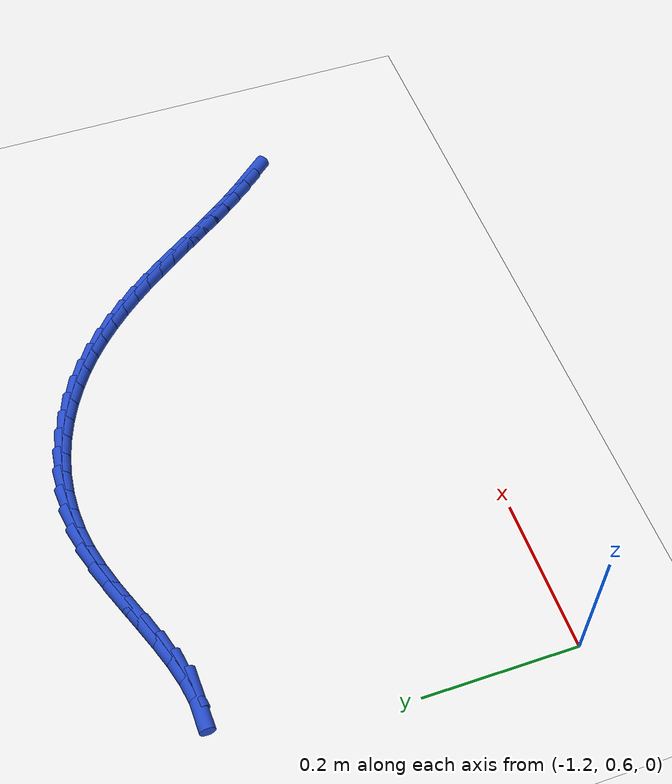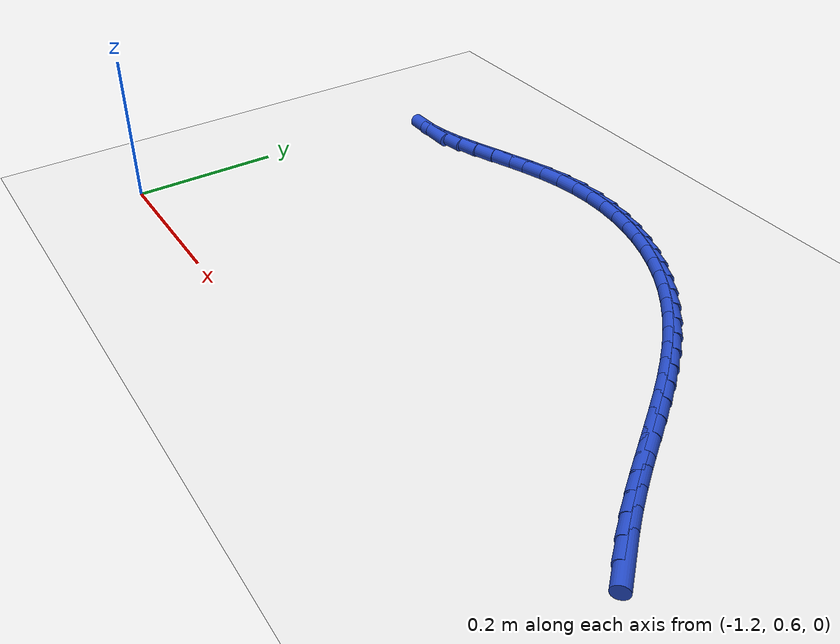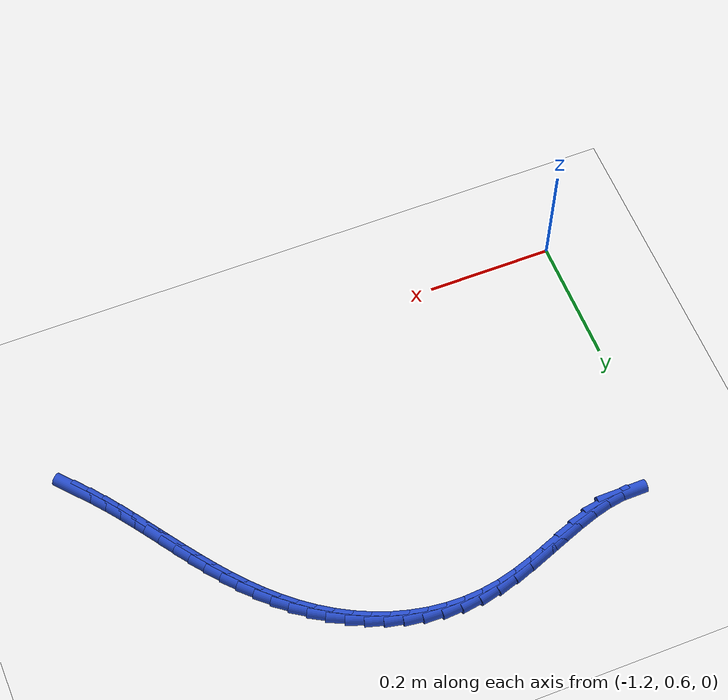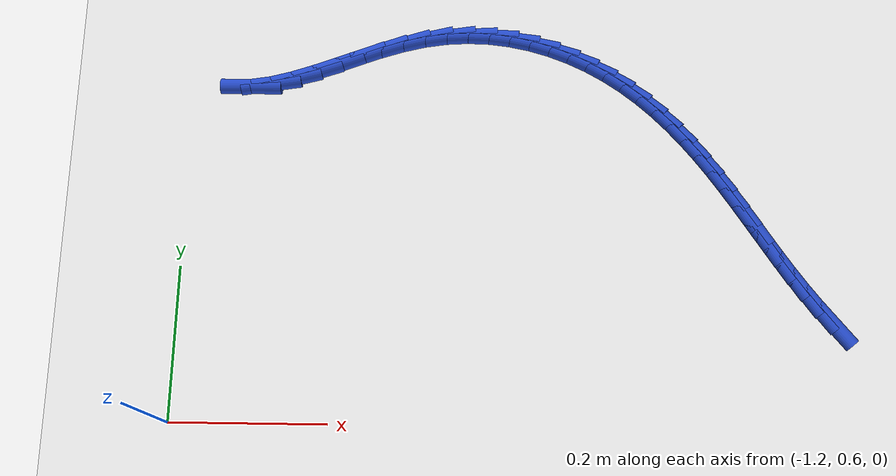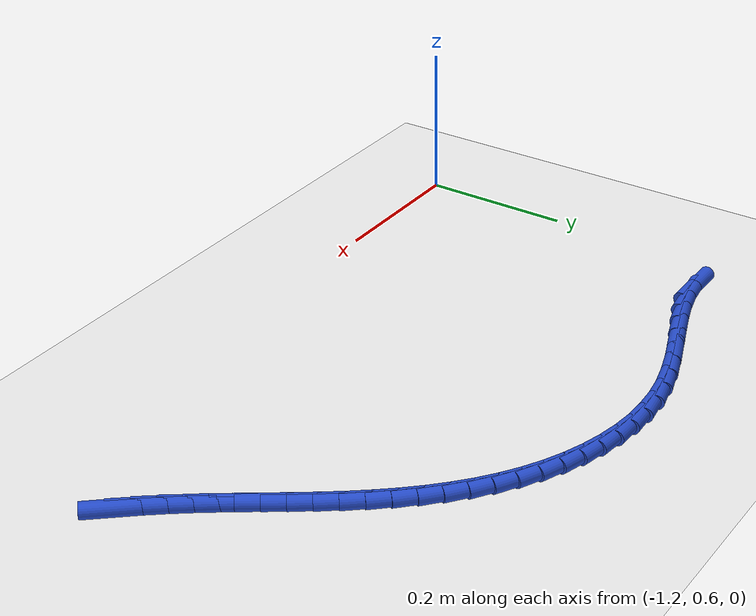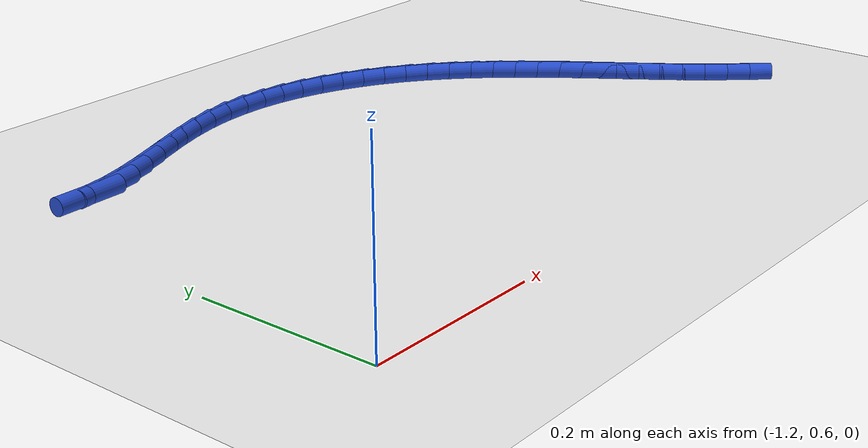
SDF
<sdf version="1.6">
 <world name="default">
  <model name="ground_plane">
   <static>1</static>
   <link name="link">
    <collision name="collision">
     <geometry><plane><normal>0 0 1</normal><size>100 100</size></plane></geometry>
     <surface><friction><ode><mu>100</mu><mu2>50</mu2></ode></friction></surface>
    </collision>
    <visual name="visual">
     <cast_shadows>0</cast_shadows>
     <geometry><plane><normal>0 0 1</normal><size>100 100</size></plane></geometry>
     <material>
      <script><uri>file://media/materials/scripts/gazebo.material</uri><name>Gazebo/WhiteGlow</name></script>
     </material>
    </visual>
   </link>
  </model>
  <model name="line">
   <link name="link_31">
    <pose>-0.3675079683596481 0.7365908078215946 0.01 0 1.57 -0.8658424899538193</pose>
    <collision name="collision">
     <geometry><cylinder><radius>0.01</radius><length>0.08</length></cylinder></geometry>
    </collision>
    <visual name="visual">
     <material>
      <script><name>Gazebo/Blue</name><uri>file://media/materials/scripts/gazebo.material</uri></script>
     </material>
     <geometry><cylinder><radius>0.01</radius><length>0.08</length></cylinder></geometry>
    </visual>
   </link>
   <link name="link_32">
    <pose>-0.3851431258824413 0.7573187318830612 0.01 0 1.57 -0.8989108063107654</pose>
    <collision name="collision">
     <geometry><cylinder><radius>0.01</radius><length>0.08</length></cylinder></geometry>
    </collision>
    <visual name="visual">
     <material>
      <script><name>Gazebo/Blue</name><uri>file://media/materials/scripts/gazebo.material</uri></script>
     </material>
     <geometry><cylinder><radius>0.01</radius><length>0.08</length></cylinder></geometry>
    </visual>
   </link>
   <link name="link_33">
    <pose>-0.40208083167461295 0.7786152419017476 0.01 0 1.57 -0.9306602874152675</pose>
    <collision name="collision">
     <geometry><cylinder><radius>0.01</radius><length>0.08</length></cylinder></geometry>
    </collision>
    <visual name="visual">
     <material>
      <script><name>Gazebo/Blue</name><uri>file://media/materials/scripts/gazebo.material</uri></script>
     </material>
     <geometry><cylinder><radius>0.01</radius><length>0.08</length></cylinder></geometry>
    </visual>
   </link>
   <link name="link_34">
    <pose>-0.4183518628415559 0.8004627282611356 0.01 0 1.57 -0.9537615742624455</pose>
    <collision name="collision">
     <geometry><cylinder><radius>0.01</radius><length>0.08</length></cylinder></geometry>
    </collision>
    <visual name="visual">
     <material>
      <script><name>Gazebo/Blue</name><uri>file://media/materials/scripts/gazebo.material</uri></script>
     </material>
     <geometry><cylinder><radius>0.01</radius><length>0.08</length></cylinder></geometry>
    </visual>
   </link>
   <link name="link_35">
    <pose>-0.43414135213555904 0.8227189396943771 0.01 0 1.57 -0.9679293875613233</pose>
    <collision name="collision">
     <geometry><cylinder><radius>0.01</radius><length>0.08</length></cylinder></geometry>
    </collision>
    <visual name="visual">
     <material>
      <script><name>Gazebo/Blue</name><uri>file://media/materials/scripts/gazebo.material</uri></script>
     </material>
     <geometry><cylinder><radius>0.01</radius><length>0.08</length></cylinder></geometry>
    </visual>
   </link>
   <link name="link_36">
    <pose>-0.4496411795427079 0.8452361765666986 0.01 0 1.57 -0.9732190251502583</pose>
    <collision name="collision">
     <geometry><cylinder><radius>0.01</radius><length>0.08</length></cylinder></geometry>
    </collision>
    <visual name="visual">
     <material>
      <script><name>Gazebo/Blue</name><uri>file://media/materials/scripts/gazebo.material</uri></script>
     </material>
     <geometry><cylinder><radius>0.01</radius><length>0.08</length></cylinder></geometry>
    </visual>
   </link>
   <link name="link_37">
    <pose>-0.46504322504908735 0.8678667392433268 0.01 0 1.57 -0.9696739872765708</pose>
    <collision name="collision">
     <geometry><cylinder><radius>0.01</radius><length>0.08</length></cylinder></geometry>
    </collision>
    <visual name="visual">
     <material>
      <script><name>Gazebo/Blue</name><uri>file://media/materials/scripts/gazebo.material</uri></script>
     </material>
     <geometry><cylinder><radius>0.01</radius><length>0.08</length></cylinder></geometry>
    </visual>
   </link>
   <link name="link_38">
    <pose>-0.4805393686407831 0.8904629280894885 0.01 0 1.57 -0.9573137500110067</pose>
    <collision name="collision">
     <geometry><cylinder><radius>0.01</radius><length>0.08</length></cylinder></geometry>
    </collision>
    <visual name="visual">
     <material>
      <script><name>Gazebo/Blue</name><uri>file://media/materials/scripts/gazebo.material</uri></script>
     </material>
     <geometry><cylinder><radius>0.01</radius><length>0.08</length></cylinder></geometry>
    </visual>
   </link>
   <link name="link_39">
    <pose>-0.4963214903038802 0.9128770434704099 0.01 0 1.57 -0.9361422142391677</pose>
    <collision name="collision">
     <geometry><cylinder><radius>0.01</radius><length>0.08</length></cylinder></geometry>
    </collision>
    <visual name="visual">
     <material>
      <script><name>Gazebo/Blue</name><uri>file://media/materials/scripts/gazebo.material</uri></script>
     </material>
     <geometry><cylinder><radius>0.01</radius><length>0.08</length></cylinder></geometry>
    </visual>
   </link>
   <link name="link_40">
    <pose>-0.5125814700244635 0.9349613857513178 0.01 0 1.57 -0.9061978779624982</pose>
    <collision name="collision">
     <geometry><cylinder><radius>0.01</radius><length>0.08</length></cylinder></geometry>
    </collision>
    <visual name="visual">
     <material>
      <script><name>Gazebo/Blue</name><uri>file://media/materials/scripts/gazebo.material</uri></script>
     </material>
     <geometry><cylinder><radius>0.01</radius><length>0.08</length></cylinder></geometry>
    </visual>
   </link>
   <link name="link_41">
    <pose>-0.5295102947037077 0.9565680643680382 0.01 0 1.57 -0.8686071542196805</pose>
    <collision name="collision">
     <geometry><cylinder><radius>0.01</radius><length>0.08</length></cylinder></geometry>
    </collision>
    <visual name="visual">
     <material>
      <script><name>Gazebo/Blue</name><uri>file://media/materials/scripts/gazebo.material</uri></script>
     </material>
     <geometry><cylinder><radius>0.01</radius><length>0.08</length></cylinder></geometry>
    </visual>
   </link>
   <link name="link_42">
    <pose>-0.5472527596798153 0.9775393136288042 0.01 0 1.57 -0.8248225254175654</pose>
    <collision name="collision">
     <geometry><cylinder><radius>0.01</radius><length>0.08</length></cylinder></geometry>
    </collision>
    <visual name="visual">
     <material>
      <script><name>Gazebo/Blue</name><uri>file://media/materials/scripts/gazebo.material</uri></script>
     </material>
     <geometry><cylinder><radius>0.01</radius><length>0.08</length></cylinder></geometry>
    </visual>
   </link>
   <link name="link_43">
    <pose>-0.5658860189990271 0.9977029070540846 0.01 0 1.57 -0.7747414183541284</pose>
    <collision name="collision">
     <geometry><cylinder><radius>0.01</radius><length>0.08</length></cylinder></geometry>
    </collision>
    <visual name="visual">
     <material>
      <script><name>Gazebo/Blue</name><uri>file://media/materials/scripts/gazebo.material</uri></script>
     </material>
     <geometry><cylinder><radius>0.01</radius><length>0.08</length></cylinder></geometry>
    </visual>
   </link>
   <link name="link_44">
    <pose>-0.5854818470650754 1.016885468069986 0.01 0 1.57 -0.7181914086654505</pose>
    <collision name="collision">
     <geometry><cylinder><radius>0.01</radius><length>0.08</length></cylinder></geometry>
    </collision>
    <visual name="visual">
     <material>
      <script><name>Gazebo/Blue</name><uri>file://media/materials/scripts/gazebo.material</uri></script>
     </material>
     <geometry><cylinder><radius>0.01</radius><length>0.08</length></cylinder></geometry>
    </visual>
   </link>
   <link name="link_45">
    <pose>-0.6061120182816933 1.0349136201026141 0.01 0 1.57 -0.6551214767461419</pose>
    <collision name="collision">
     <geometry><cylinder><radius>0.01</radius><length>0.08</length></cylinder></geometry>
    </collision>
    <visual name="visual">
     <material>
      <script><name>Gazebo/Blue</name><uri>file://media/materials/scripts/gazebo.material</uri></script>
     </material>
     <geometry><cylinder><radius>0.01</radius><length>0.08</length></cylinder></geometry>
    </visual>
   </link>
   <link name="link_46">
    <pose>-0.6278483070526133 1.051613986578076 0.01 0 1.57 -0.5864121940429476</pose>
    <collision name="collision">
     <geometry><cylinder><radius>0.01</radius><length>0.08</length></cylinder></geometry>
    </collision>
    <visual name="visual">
     <material>
      <script><name>Gazebo/Blue</name><uri>file://media/materials/scripts/gazebo.material</uri></script>
     </material>
     <geometry><cylinder><radius>0.01</radius><length>0.08</length></cylinder></geometry>
    </visual>
   </link>
   <link name="link_47">
    <pose>-0.6507348701033847 1.0668191745765627 0.01 0 1.57 -0.5150181969271446</pose>
    <collision name="collision">
     <geometry><cylinder><radius>0.01</radius><length>0.08</length></cylinder></geometry>
    </collision>
    <visual name="visual">
     <material>
      <script><name>Gazebo/Blue</name><uri>file://media/materials/scripts/gazebo.material</uri></script>
     </material>
     <geometry><cylinder><radius>0.01</radius><length>0.08</length></cylinder></geometry>
    </visual>
   </link>
   <link name="link_48">
    <pose>-0.6747054690454833 1.0803857094153761 0.01 0 1.57 -0.4412885654606538</pose>
    <collision name="collision">
     <geometry><cylinder><radius>0.01</radius><length>0.08</length></cylinder></geometry>
    </collision>
    <visual name="visual">
     <material>
      <script><name>Gazebo/Blue</name><uri>file://media/materials/scripts/gazebo.material</uri></script>
     </material>
     <geometry><cylinder><radius>0.01</radius><length>0.08</length></cylinder></geometry>
    </visual>
   </link>
   <link name="link_49">
    <pose>-0.6996662855985998 1.0921760918790904 0.01 0 1.57 -0.3648690006106544</pose>
    <collision name="collision">
     <geometry><cylinder><radius>0.01</radius><length>0.08</length></cylinder></geometry>
    </collision>
    <visual name="visual">
     <material>
      <script><name>Gazebo/Blue</name><uri>file://media/materials/scripts/gazebo.material</uri></script>
     </material>
     <geometry><cylinder><radius>0.01</radius><length>0.08</length></cylinder></geometry>
    </visual>
   </link>
   <link name="link_50">
    <pose>-0.7255235014824252 1.1020528227522801 0.01 0 1.57 -0.28551498090484334</pose>
    <collision name="collision">
     <geometry><cylinder><radius>0.01</radius><length>0.08</length></cylinder></geometry>
    </collision>
    <visual name="visual">
     <material>
      <script><name>Gazebo/Blue</name><uri>file://media/materials/scripts/gazebo.material</uri></script>
     </material>
     <geometry><cylinder><radius>0.01</radius><length>0.08</length></cylinder></geometry>
    </visual>
   </link>
   <link name="link_51">
    <pose>-0.7521832984166503 1.10987840281952 0.01 0 1.57 -0.20312326307342912</pose>
    <collision name="collision">
     <geometry><cylinder><radius>0.01</radius><length>0.08</length></cylinder></geometry>
    </collision>
    <visual name="visual">
     <material>
      <script><name>Gazebo/Blue</name><uri>file://media/materials/scripts/gazebo.material</uri></script>
     </material>
     <geometry><cylinder><radius>0.01</radius><length>0.08</length></cylinder></geometry>
    </visual>
   </link>
   <link name="link_52">
    <pose>-0.7795518581209665 1.1155153328653846 0.01 0 1.57 -0.11776443262450144</pose>
    <collision name="collision">
     <geometry><cylinder><radius>0.01</radius><length>0.08</length></cylinder></geometry>
    </collision>
    <visual name="visual">
     <material>
      <script><name>Gazebo/Blue</name><uri>file://media/materials/scripts/gazebo.material</uri></script>
     </material>
     <geometry><cylinder><radius>0.01</radius><length>0.08</length></cylinder></geometry>
    </visual>
   </link>
   <link name="link_53">
    <pose>-0.8075353623150642 1.1188261136744482 0.01 0 1.57 -0.029710368943580347</pose>
    <collision name="collision">
     <geometry><cylinder><radius>0.01</radius><length>0.08</length></cylinder></geometry>
    </collision>
    <visual name="visual">
     <material>
      <script><name>Gazebo/Blue</name><uri>file://media/materials/scripts/gazebo.material</uri></script>
     </material>
     <geometry><cylinder><radius>0.01</radius><length>0.08</length></cylinder></geometry>
    </visual>
   </link>
   <link name="link_54">
    <pose>-0.8360399927186347 1.1196732460312857 0.01 0 1.57 0.06055145975937655</pose>
    <collision name="collision">
     <geometry><cylinder><radius>0.01</radius><length>0.08</length></cylinder></geometry>
    </collision>
    <visual name="visual">
     <material>
      <script><name>Gazebo/Blue</name><uri>file://media/materials/scripts/gazebo.material</uri></script>
     </material>
     <geometry><cylinder><radius>0.01</radius><length>0.08</length></cylinder></geometry>
    </visual>
   </link>
   <link name="link_55">
    <pose>-0.8649719310513689 1.117919230720471 0.01 0 1.57 0.15232514810783981</pose>
    <collision name="collision">
     <geometry><cylinder><radius>0.01</radius><length>0.08</length></cylinder></geometry>
    </collision>
    <visual name="visual">
     <material>
      <script><name>Gazebo/Blue</name><uri>file://media/materials/scripts/gazebo.material</uri></script>
     </material>
     <geometry><cylinder><radius>0.01</radius><length>0.08</length></cylinder></geometry>
    </visual>
   </link>
   <link name="link_56">
    <pose>-0.8942373590329572 1.1134265685265787 0.01 0 1.57 0.24121271263919725</pose>
    <collision name="collision">
     <geometry><cylinder><radius>0.01</radius><length>0.08</length></cylinder></geometry>
    </collision>
    <visual name="visual">
     <material>
      <script><name>Gazebo/Blue</name><uri>file://media/materials/scripts/gazebo.material</uri></script>
     </material>
     <geometry><cylinder><radius>0.01</radius><length>0.08</length></cylinder></geometry>
    </visual>
   </link>
   <link name="link_57">
    <pose>-0.9237328816446243 1.106170598514795 0.01 0 1.57 0.30754703550486334</pose>
    <collision name="collision">
     <geometry><cylinder><radius>0.01</radius><length>0.08</length></cylinder></geometry>
    </collision>
    <visual name="visual">
     <material>
      <script><name>Gazebo/Blue</name><uri>file://media/materials/scripts/gazebo.material</uri></script>
     </material>
     <geometry><cylinder><radius>0.01</radius><length>0.08</length></cylinder></geometry>
    </visual>
   </link>
   <link name="link_58">
    <pose>-0.9532997016489073 1.0967794384724598 0.01 0 1.57 0.3473164274571994</pose>
    <collision name="collision">
     <geometry><cylinder><radius>0.01</radius><length>0.08</length></cylinder></geometry>
    </collision>
    <visual name="visual">
     <material>
      <script><name>Gazebo/Blue</name><uri>file://media/materials/scripts/gazebo.material</uri></script>
     </material>
     <geometry><cylinder><radius>0.01</radius><length>0.08</length></cylinder></geometry>
    </visual>
   </link>
   <link name="link_59">
    <pose>-0.9827591450152 1.0861154052485402 0.01 0 1.57 0.36279974582739744</pose>
    <collision name="collision">
     <geometry><cylinder><radius>0.01</radius><length>0.08</length></cylinder></geometry>
    </collision>
    <visual name="visual">
     <material>
      <script><name>Gazebo/Blue</name><uri>file://media/materials/scripts/gazebo.material</uri></script>
     </material>
     <geometry><cylinder><radius>0.01</radius><length>0.08</length></cylinder></geometry>
    </visual>
   </link>
   <link name="link_60">
    <pose>-1.0119325120552334 1.0750411180043788 0.01 0 1.57 0.3543720580149569</pose>
    <collision name="collision">
     <geometry><cylinder><radius>0.01</radius><length>0.08</length></cylinder></geometry>
    </collision>
    <visual name="visual">
     <material>
      <script><name>Gazebo/Blue</name><uri>file://media/materials/scripts/gazebo.material</uri></script>
     </material>
     <geometry><cylinder><radius>0.01</radius><length>0.08</length></cylinder></geometry>
    </visual>
   </link>
   <link name="link_61">
    <pose>-1.0406411030807383 1.0644191959013207 0.01 0 1.57 0.32020725726535043</pose>
    <collision name="collision">
     <geometry><cylinder><radius>0.01</radius><length>0.08</length></cylinder></geometry>
    </collision>
    <visual name="visual">
     <material>
      <script><name>Gazebo/Blue</name><uri>file://media/materials/scripts/gazebo.material</uri></script>
     </material>
     <geometry><cylinder><radius>0.01</radius><length>0.08</length></cylinder></geometry>
    </visual>
   </link>
   <link name="link_62">
    <pose>-1.068706218403446 1.0551122581007095 0.01 0 1.57 0.2559548408038045</pose>
    <collision name="collision">
     <geometry><cylinder><radius>0.01</radius><length>0.08</length></cylinder></geometry>
    </collision>
    <visual name="visual">
     <material>
      <script><name>Gazebo/Blue</name><uri>file://media/materials/scripts/gazebo.material</uri></script>
     </material>
     <geometry><cylinder><radius>0.01</radius><length>0.08</length></cylinder></geometry>
    </visual>
   </link>
   <link name="link_63">
    <pose>-1.0959491583350862 1.0479829237638891 0.01 0 1.57 0.15457968431410574</pose>
    <collision name="collision">
     <geometry><cylinder><radius>0.01</radius><length>0.08</length></cylinder></geometry>
    </collision>
    <visual name="visual">
     <material>
      <script><name>Gazebo/Blue</name><uri>file://media/materials/scripts/gazebo.material</uri></script>
     </material>
     <geometry><cylinder><radius>0.01</radius><length>0.08</length></cylinder></geometry>
    </visual>
   </link>
   <link name="link_64">
    <pose>-1.1221912231873916 1.043893812052204 0.01 0 1.57 0.007432082565260044</pose>
    <collision name="collision">
     <geometry><cylinder><radius>0.01</radius><length>0.08</length></cylinder></geometry>
    </collision>
    <visual name="visual">
     <material>
      <script><name>Gazebo/Blue</name><uri>file://media/materials/scripts/gazebo.material</uri></script>
     </material>
     <geometry><cylinder><radius>0.01</radius><length>0.08</length></cylinder></geometry>
    </visual>
   </link>
  </model>
 </world>
</sdf>
